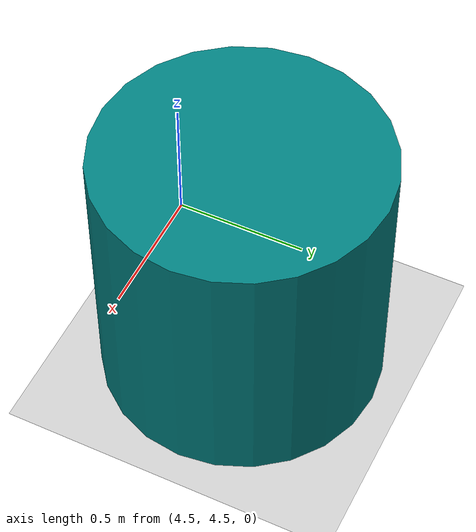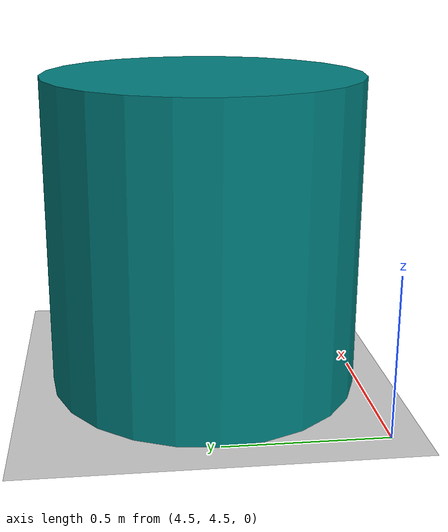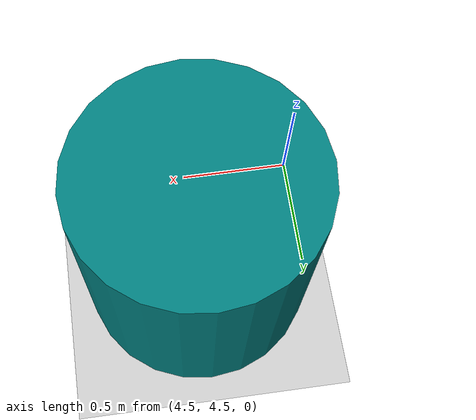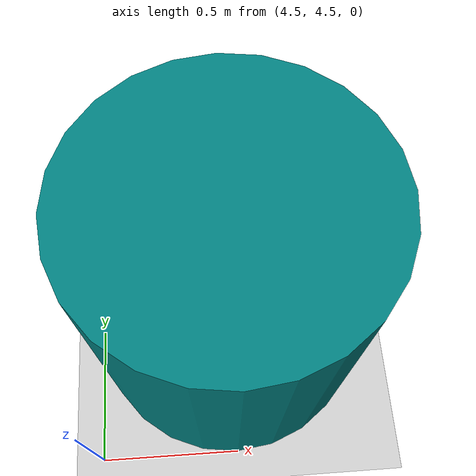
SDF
<?xml version="1.0" ?>
<sdf version="1.4">
  <world name="default">
    <physics type="ode">
	      <max_step_size>0.0005</max_step_size>
        <real_time_factor>1</real_time_factor>
        <real_time_update_rate>0</real_time_update_rate>
    </physics>

    <include>
      <uri>model://ground_plane</uri>
    </include>
    <include>
      <uri>model://sun</uri>
    </include>

    <model name="world_cylinder">
        <pose>5 5 0.5 0 0 0</pose>
        <static>true</static>
        <link name="cylinder_target">
            <pose>0 0 0 0 0 0</pose>
            <collision name="cylinder_target_collision">
                <geometry>
                    <cylinder>
                       <length>1.0</length>
                       <radius>0.5</radius>
                    </cylinder>
                </geometry>
            </collision>

            <visual name="cylinder_target_visual">
                <geometry>
                    <cylinder>
                       <length>1.0</length>
                       <radius>0.5</radius>
                    </cylinder>
                </geometry>
                <material>
		    <ambient>0.0 0.5 0.5 1.0</ambient>
		</material>
            </visual>
        </link>
    </model>

    <gui fullscreen='0'>
      <camera name='user_camera'>
        <pose>-3.23693 -5.55652 3.89026 0 0.279643 1.15619</pose>
        <view_controller>orbit</view_controller>
      </camera>
    </gui>
    <plugin filename="libgazebo_world_step_update.so" name="gazebo_world_step_update"/>
  </world>
</sdf>
